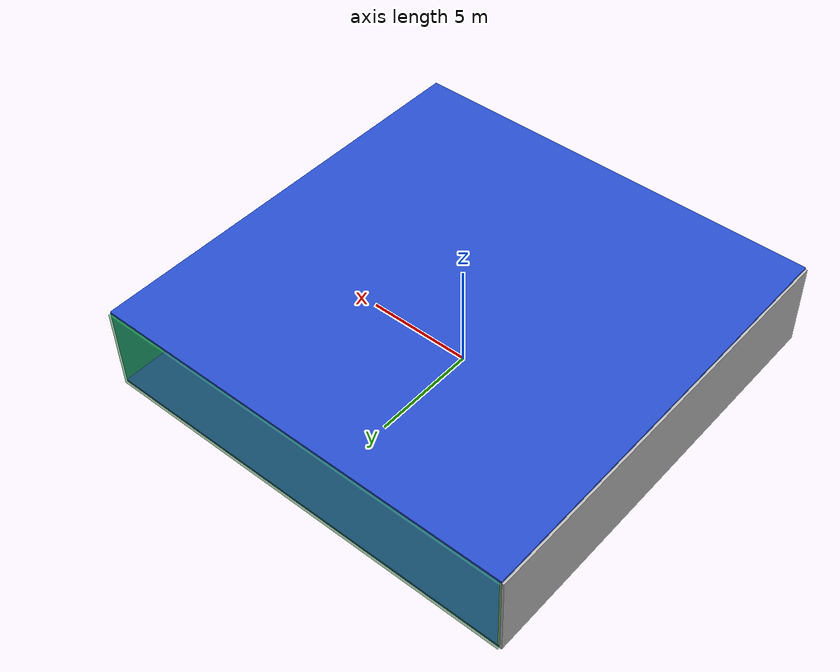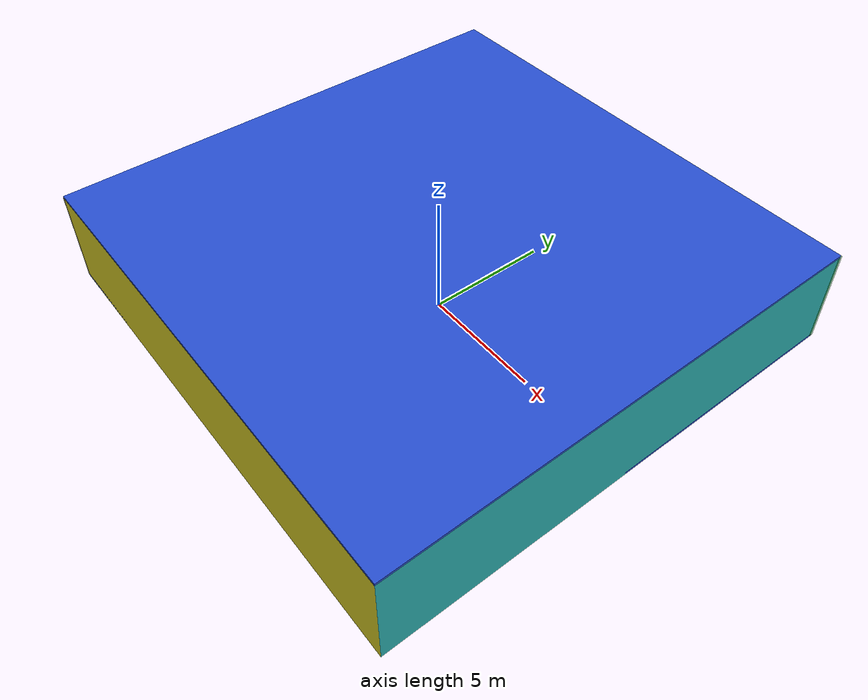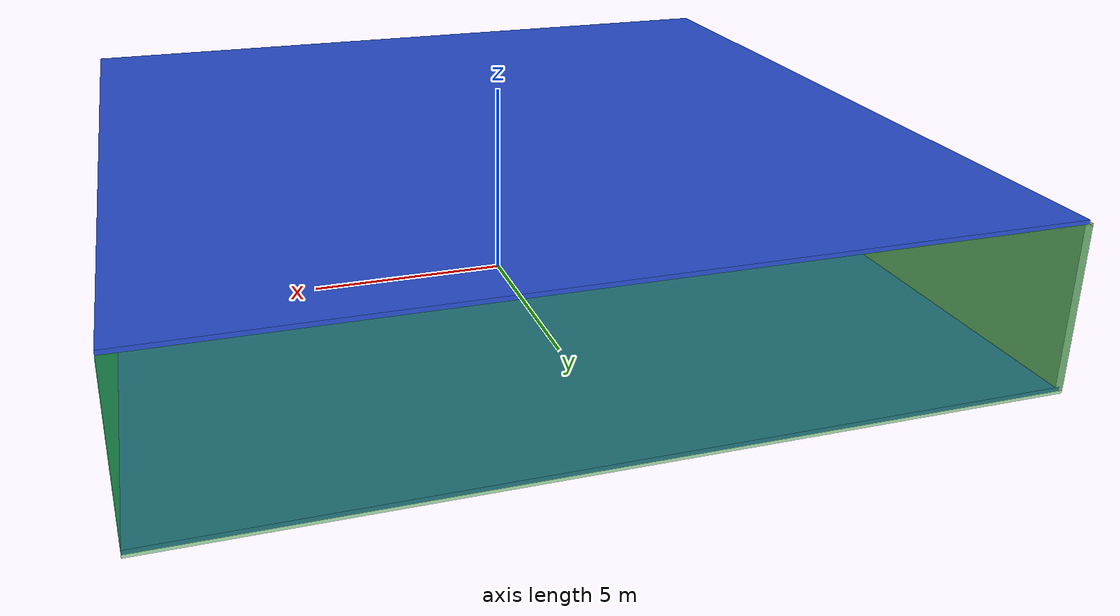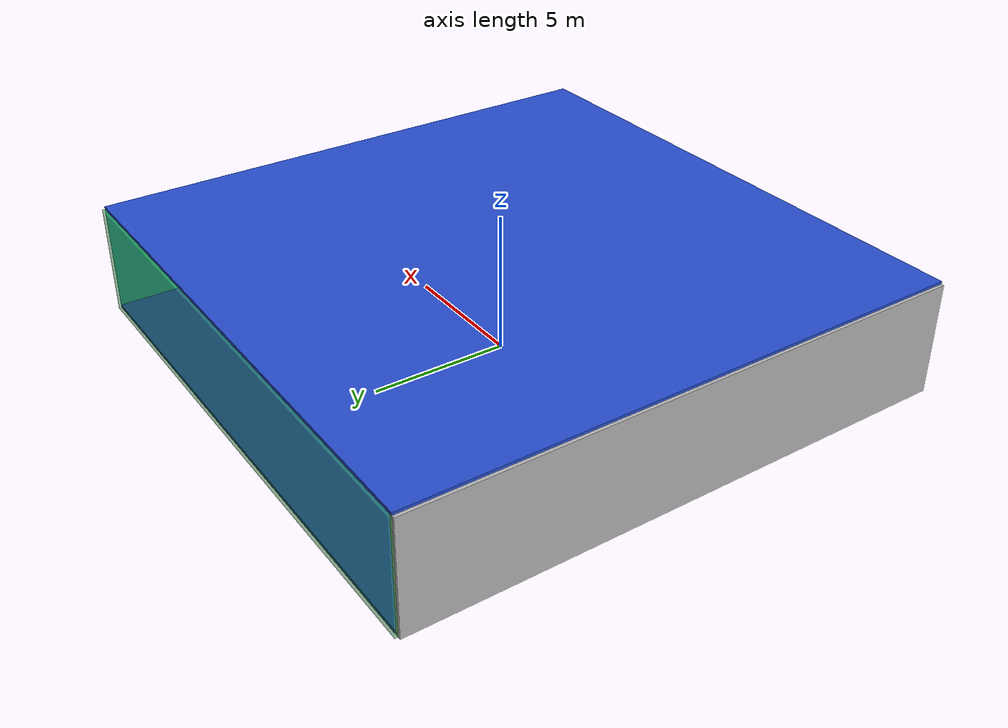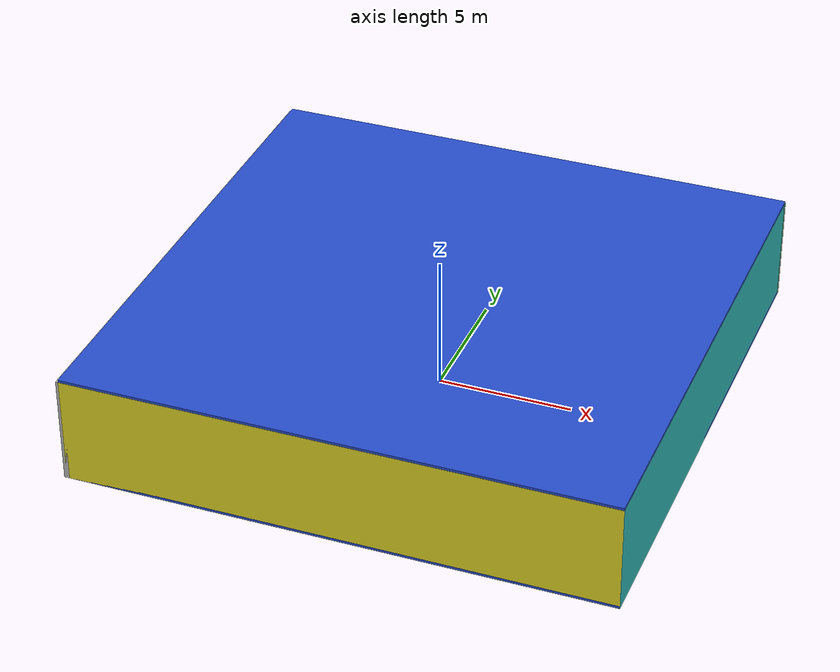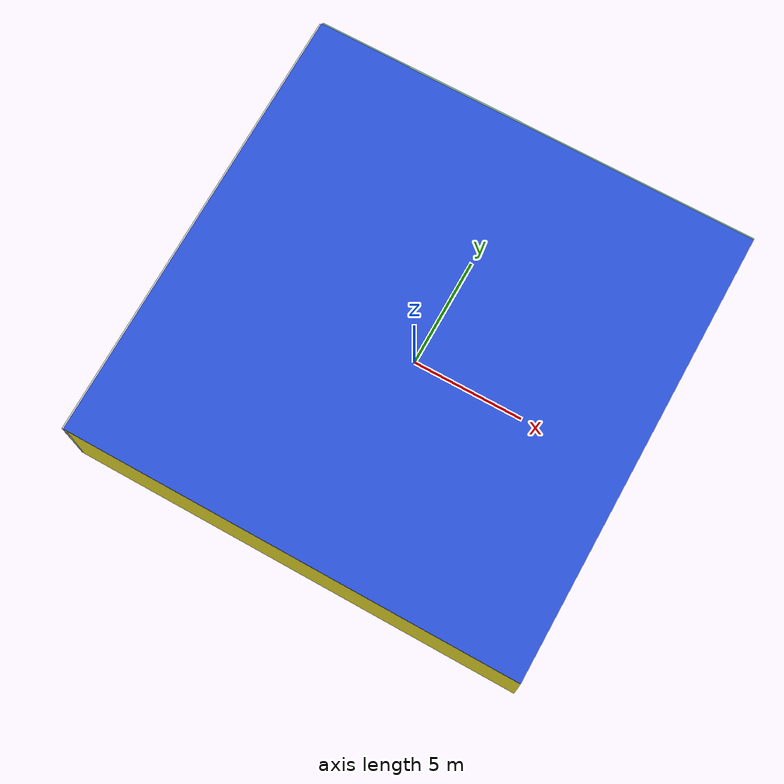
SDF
<sdf version="1.4">
 <world name="default">
  <physics type="ode">
   <max_step_size>0.001</max_step_size>
   <real_time_factor>1</real_time_factor>
   <real_time_update_rate>1000</real_time_update_rate>
   <gravity>0 0 -9.8</gravity>
  </physics>
  <scene><ambient>0.4 0.4 0.4 1</ambient><background>0.7 0.7 0.7 1</background><shadows>1</shadows></scene>
  <model name="Surrounding">
   <static>1</static>
   <link name="Ceiling">
    <collision name="Ceiling_Collision"><geometry><box><size>20 20 0.1</size></box></geometry></collision>
    <visual name="Ceiling_Visual">
     <geometry><box><size>20 20 0.1</size></box></geometry>
     <material>
      <script><uri>file://media/materials/scripts/gazebo.material</uri><name>Gazebo/BlueGlow</name></script>
     </material>
    </visual>
    <pose>0 0 4.05 0 0 0</pose>
   </link>
   <link name="Wall_South">
    <collision name="Wall_South_Collision">
     <geometry><box><size>20 0 4</size></box></geometry>
     <pose>0 0 2 0 -0 0</pose>
    </collision>
    <visual name="Wall_South_Visual">
     <pose>0 0 2 0 -0 0</pose>
     <geometry><box><size>20 0 4</size></box></geometry>
     <material>
      <script><uri>file://media/materials/scripts/gazebo.material</uri><name>Gazebo/YellowGlow</name></script>
     </material>
    </visual>
    <velocity_decay><linear>0</linear><angular>0</angular></velocity_decay>
    <pose>0 -10 0 0 -0 0</pose>
   </link>
   <link name="Wall_East">
    <collision name="Wall_21_Collision">
     <geometry><box><size>20 0 4</size></box></geometry>
     <pose>0 0 2 0 -0 0</pose>
    </collision>
    <visual name="Wall_21_Visual">
     <pose>0 0 2 0 -0 0</pose>
     <geometry><box><size>20 0 4</size></box></geometry>
     <material>
      <script>
       <uri>file://media/materials/scripts/gazebo.material</uri>
       <name>Gazebo/TurquoiseGlowOutline</name>
      </script>
     </material>
    </visual>
    <velocity_decay><linear>0</linear><angular>0</angular></velocity_decay>
    <pose>10 0 0 0 -0 1.5708</pose>
   </link>
   <link name="Wall_North">
    <collision name="Wall_22_Collision">
     <geometry><box><size>20 0.2 4</size></box></geometry>
     <pose>0 0 2 0 -0 0</pose>
    </collision>
    <visual name="Wall_22_Visual">
     <pose>0 0 2 0 -0 0</pose>
     <geometry><box><size>20 0.2 4</size></box></geometry>
     <material>
      <script><uri>file://media/materials/scripts/gazebo.material</uri><name>Gazebo/GreenTransparent</name></script>
     </material>
    </visual>
    <velocity_decay><linear>0</linear><angular>0</angular></velocity_decay>
    <pose>0 10 0 0 -0 0</pose>
   </link>
   <link name="Wall_West">
    <collision name="Wall_23_Collision">
     <geometry><box><size>20 0.2 4</size></box></geometry>
     <pose>0 0 2 0 -0 0</pose>
    </collision>
    <visual name="Wall_23_Visual">
     <pose>0 0 2 0 -0 0</pose>
     <geometry><box><size>20 0.2 4</size></box></geometry>
     <material>
      <script><uri>file://media/materials/scripts/gazebo.material</uri><name>Gazebo/JointAnchor</name></script>
     </material>
    </visual>
    <velocity_decay><linear>0</linear><angular>0</angular></velocity_decay>
    <pose>-10 0 0 0 0 -1.5708</pose>
   </link>
   <link name="Ground_link">
    <collision name="collision">
     <pose>0 0 .05 0 -0 0</pose>
     <geometry><box><size>20 20 0.1</size></box></geometry>
    </collision>
    <visual name="visual">
     <pose>0 0 .05 0 -0 0</pose>
     <geometry><box><size>20 20 0.1</size></box></geometry>
     <material>
      <script><uri>file://media/materials/scripts/gazebo.material</uri><name>Gazebo/BlueGlow</name></script>
     </material>
    </visual>
   </link>
   <static>1</static>
  </model>
  <spherical_coordinates>
   <surface_model>EARTH_WGS84</surface_model>
   <latitude_deg>0</latitude_deg>
   <longitude_deg>0</longitude_deg>
   <elevation>0</elevation>
   <heading_deg>0</heading_deg>
  </spherical_coordinates>
  <light name="lightball_0" type="diffuse">
   <diffuse>0.8 0.8 0.8 1</diffuse>
   <specular>0.2 0.2 0.2 1</specular>
   <attenuation>
    <range>100</range>
    <constant>0.7</constant>
    <linear>0.01</linear>
    <quadratic>0.001</quadratic>
   </attenuation>
   <direction>-0.5 0.1 -0.9</direction>
   <pose>-9.10089771124 -6.26602990499 1.65780251377 0 0 0</pose>
  </light>
  <light name="lightball_1" type="diffuse">
   <diffuse>0.8 0.8 0.8 1</diffuse>
   <specular>0.2 0.2 0.2 1</specular>
   <attenuation>
    <range>100</range>
    <constant>0.7</constant>
    <linear>0.01</linear>
    <quadratic>0.001</quadratic>
   </attenuation>
   <direction>-0.5 0.1 -0.9</direction>
   <pose>-7.89839133708 3.79721483904 1.67709903513 0 0 0</pose>
  </light>
  <light name="lightball_2" type="diffuse">
   <diffuse>0.8 0.8 0.8 1</diffuse>
   <specular>0.2 0.2 0.2 1</specular>
   <attenuation>
    <range>100</range>
    <constant>0.7</constant>
    <linear>0.01</linear>
    <quadratic>0.001</quadratic>
   </attenuation>
   <direction>-0.5 0.1 -0.9</direction>
   <pose>-7.87059768421 7.90048540281 2.8207219809 0 0 0</pose>
  </light>
  <light name="lightball_3" type="diffuse">
   <diffuse>0.8 0.8 0.8 1</diffuse>
   <specular>0.2 0.2 0.2 1</specular>
   <attenuation>
    <range>100</range>
    <constant>0.7</constant>
    <linear>0.01</linear>
    <quadratic>0.001</quadratic>
   </attenuation>
   <direction>-0.5 0.1 -0.9</direction>
   <pose>-8.70208519252 5.73544036003 1.28692159147 0 0 0</pose>
  </light>
  <light name="lightball_4" type="diffuse">
   <diffuse>0.8 0.8 0.8 1</diffuse>
   <specular>0.2 0.2 0.2 1</specular>
   <attenuation>
    <range>100</range>
    <constant>0.7</constant>
    <linear>0.01</linear>
    <quadratic>0.001</quadratic>
   </attenuation>
   <direction>-0.5 0.1 -0.9</direction>
   <pose>0.849216891897 8.42753774956 1.10747452472 0 0 0</pose>
  </light>
  <light name="lightball_5" type="diffuse">
   <diffuse>0.8 0.8 0.8 1</diffuse>
   <specular>0.2 0.2 0.2 1</specular>
   <attenuation>
    <range>100</range>
    <constant>0.7</constant>
    <linear>0.01</linear>
    <quadratic>0.001</quadratic>
   </attenuation>
   <direction>-0.5 0.1 -0.9</direction>
   <pose>3.70861710033 -6.21123067293 1.5614088453 0 0 0</pose>
  </light>
  <light name="lightball_6" type="diffuse">
   <diffuse>0.8 0.8 0.8 1</diffuse>
   <specular>0.2 0.2 0.2 1</specular>
   <attenuation>
    <range>100</range>
    <constant>0.7</constant>
    <linear>0.01</linear>
    <quadratic>0.001</quadratic>
   </attenuation>
   <direction>-0.5 0.1 -0.9</direction>
   <pose>2.39578773386 6.82902427213 1.0364751239 0 0 0</pose>
  </light>
  <light name="lightball_7" type="diffuse">
   <diffuse>0.8 0.8 0.8 1</diffuse>
   <specular>0.2 0.2 0.2 1</specular>
   <attenuation>
    <range>100</range>
    <constant>0.7</constant>
    <linear>0.01</linear>
    <quadratic>0.001</quadratic>
   </attenuation>
   <direction>-0.5 0.1 -0.9</direction>
   <pose>-9.29311749572 -1.06802623355 2.36095773427 0 0 0</pose>
  </light>
  <light name="lightball_8" type="diffuse">
   <diffuse>0.8 0.8 0.8 1</diffuse>
   <specular>0.2 0.2 0.2 1</specular>
   <attenuation>
    <range>100</range>
    <constant>0.7</constant>
    <linear>0.01</linear>
    <quadratic>0.001</quadratic>
   </attenuation>
   <direction>-0.5 0.1 -0.9</direction>
   <pose>-0.0722272029075 -2.36693703863 0.775973548242 0 0 0</pose>
  </light>
  <light name="lightball_9" type="diffuse">
   <diffuse>0.8 0.8 0.8 1</diffuse>
   <specular>0.2 0.2 0.2 1</specular>
   <attenuation>
    <range>100</range>
    <constant>0.7</constant>
    <linear>0.01</linear>
    <quadratic>0.001</quadratic>
   </attenuation>
   <direction>-0.5 0.1 -0.9</direction>
   <pose>9.35642255075 1.90696688095 3.49400226216 0 0 0</pose>
  </light>
  <light name="lightball_10" type="diffuse">
   <diffuse>0.8 0.8 0.8 1</diffuse>
   <specular>0.2 0.2 0.2 1</specular>
   <attenuation>
    <range>100</range>
    <constant>0.7</constant>
    <linear>0.01</linear>
    <quadratic>0.001</quadratic>
   </attenuation>
   <direction>-0.5 0.1 -0.9</direction>
   <pose>3.31399836149 -4.63430405328 1.7733691549 0 0 0</pose>
  </light>
  <include>
   <uri>model://construction_cone</uri>
   <pose>-7.36968752003 -1.24352868539 0 0 0 3.04730465344</pose>
  </include>
  <include>
   <uri>model://robocup_3Dsim_goal</uri>
   <pose>-2.09889962365 -6.72738009435 0 0 0 2.67127953862</pose>
  </include>
  <include><uri>model://cabinet</uri><pose>4.57189833142 -4.68089871766 0 0 0 0.818263488479</pose></include>
  <include><uri>model://cabinet</uri><pose>4.42919051857 2.06395670661 0 0 0 1.40369611039</pose></include>
 </world>
</sdf>

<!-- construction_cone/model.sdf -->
<sdf version="1.5">
  <model name="Construction Cone">
    <link name="link">
      <collision name="collision">
        <geometry>
          <mesh>
            <scale>10 10 10</scale>
            <uri>file://isr-testbed/construction_cone/meshes/construction_cone.dae</uri>
          </mesh>
        </geometry>
      </collision>
      <visual name="visual">
        <geometry>
          <mesh>
            <scale>10 10 10</scale>
            <uri>file://isr-testbed/construction_cone/meshes/construction_cone.dae</uri>
          </mesh>
        </geometry>
      </visual>
    </link>
  </model>
</sdf>

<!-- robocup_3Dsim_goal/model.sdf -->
<sdf version="1.5">
  <model name="robocup_3d_goal">
    <static>true</static>
    <link name="left_post">
      <pose>0 1.05 0.45 0 0 0</pose>
      <collision name="collision">
        <geometry>
          <cylinder>
            <radius>0.05</radius>
            <length>0.9</length>
          </cylinder>
        </geometry>
      </collision>
      <visual name="visual">
        <geometry>
          <cylinder>
            <radius>0.05</radius>
            <length>0.9</length>
          </cylinder>
        </geometry>
        <material>
          <script>
            <uri>file://media/materials/scripts/gazebo.material</uri>
            <name>Gazebo/ZincYellow</name>
          </script>
        </material>
      </visual>
    </link>
    <link name="left_support_horiz_lower">
      <pose>0.30 1.05 0.01 0 0 0</pose>
      <collision name="collision">
        <geometry>
          <box>
            <size>0.50 0.02 0.02</size>
          </box>
        </geometry>
      </collision>
      <visual name="visual">
        <geometry>
          <box>
            <size>0.50 0.02 0.02</size>
          </box>
        </geometry>
        <material>
          <script>
            <uri>file://media/materials/scripts/gazebo.material</uri>
            <name>Gazebo/White</name>
          </script>
        </material>
      </visual>
    </link>
    <link name="left_support_horiz_upper">
      <pose>0.30 1.05 0.79 0 0 0</pose>
      <collision name="collision">
        <geometry>
          <box>
            <size>0.50 0.02 0.02</size>
          </box>
        </geometry>
      </collision>
      <visual name="visual">
        <geometry>
          <box>
            <size>0.50 0.02 0.02</size>
          </box>
        </geometry>
        <material>
          <script>
            <uri>file://media/materials/scripts/gazebo.material</uri>
            <name>Gazebo/White</name>
          </script>
        </material>
      </visual>
    </link>
    <link name="left_support_vertical">
      <pose>0.56 1.05 0.4 0 1.5708 0</pose>
      <collision name="collision">
        <geometry>
          <box>
            <size>0.80 0.02 0.02</size>
          </box>
        </geometry>
      </collision>
      <visual name="visual">
        <geometry>
          <box>
            <size>0.80 0.02 0.02</size>
          </box>
        </geometry>
        <material>
          <script>
            <uri>file://media/materials/scripts/gazebo.material</uri>
            <name>Gazebo/White</name>
          </script>
        </material>
      </visual>
    </link>
    <link name="right_support_horiz_lower">
      <pose>0.30 -1.05 0.01 0 0 0</pose>
      <collision name="collision">
        <geometry>
          <box>
            <size>0.50 0.02 0.02</size>
          </box>
        </geometry>
      </collision>
      <visual name="visual">
        <geometry>
          <box>
            <size>0.50 0.02 0.02</size>
          </box>
        </geometry>
        <material>
          <script>
            <uri>file://media/materials/scripts/gazebo.material</uri>
            <name>Gazebo/White</name>
          </script>
        </material>
      </visual>
    </link>
    <link name="right_support_horiz_upper">
      <pose>0.30 -1.05 0.79 0 0 0</pose>
      <collision name="collision">
        <geometry>
          <box>
            <size>0.50 0.02 0.02</size>
          </box>
        </geometry>
      </collision>
      <visual name="visual">
        <geometry>
          <box>
            <size>0.50 0.02 0.02</size>
          </box>
        </geometry>
        <material>
          <script>
            <uri>file://media/materials/scripts/gazebo.material</uri>
            <name>Gazebo/White</name>
          </script>
        </material>
      </visual>
    </link>
    <link name="right_support_vertical">
      <pose>0.56 -1.05 0.4 0 1.5708 0</pose>
      <collision name="collision">
        <geometry>
          <box>
            <size>0.80 0.02 0.02</size>
          </box>
        </geometry>
      </collision>
      <visual name="visual">
        <geometry>
          <box>
            <size>0.80 0.02 0.02</size>
          </box>
        </geometry>
        <material>
          <script>
            <uri>file://media/materials/scripts/gazebo.material</uri>
            <name>Gazebo/White</name>
          </script>
        </material>
      </visual>
    </link>
    <link name="center_support_horiz_lower">
      <pose>0.56 0 0.01 0 1.5708 0</pose>
      <collision name="collision">
        <geometry>
          <box>
            <size>0.02 2.08 0.02</size>
          </box>
        </geometry>
      </collision>
      <visual name="visual">
        <geometry>
          <box>
            <size>0.02 2.08 0.02</size>
          </box>
        </geometry>
        <material>
          <script>
            <uri>file://media/materials/scripts/gazebo.material</uri>
            <name>Gazebo/White</name>
          </script>
        </material>
      </visual>
    </link>
    <link name="center_support_horiz_upper">
      <pose>0.56 0 0.79 0 1.5708 0</pose>
      <collision name="collision">
        <geometry>
          <box>
            <size>0.02 2.08 0.02</size>
          </box>
        </geometry>
      </collision>
      <visual name="visual">
        <geometry>
          <box>
            <size>0.02 2.08 0.02</size>
          </box>
        </geometry>
        <material>
          <script>
            <uri>file://media/materials/scripts/gazebo.material</uri>
            <name>Gazebo/White</name>
          </script>
        </material>
      </visual>
    </link>
    <link name="right_post">
      <pose>0 -1.05 0.45 0 0 0</pose>
      <collision name="collision">
        <geometry>
          <cylinder>
            <radius>0.05</radius>
            <length>0.9</length>
          </cylinder>
        </geometry>
      </collision>
      <visual name="visual">
        <geometry>
          <cylinder>
            <radius>0.05</radius>
            <length>0.9</length>
          </cylinder>
        </geometry>
        <material>
          <script>
            <uri>file://media/materials/scripts/gazebo.material</uri>
            <name>Gazebo/ZincYellow</name>
          </script>
        </material>
      </visual>
    </link>
    <link name="crossbar">
      <pose>0 0 0.85 1.57 1.57 0</pose>
      <collision name="collision">
        <geometry>
          <cylinder>
            <radius>0.05</radius>
            <length>2.0</length>
          </cylinder>
        </geometry>
      </collision>
      <visual name="visual">
        <geometry>
          <cylinder>
            <radius>0.05</radius>
            <length>2.0</length>
          </cylinder>
        </geometry>
        <material>
          <script>
            <uri>file://media/materials/scripts/gazebo.material</uri>
            <name>Gazebo/ZincYellow</name>
          </script>
        </material>
      </visual>
    </link>
    <link name="center_net">
      <pose>0.56 0 0.40 0 0 0</pose>
      <collision name="collision">
        <geometry>
          <box>
            <size>0.01 2.1 0.80</size>
          </box>
        </geometry>
      </collision>
      <visual name="visual">
        <geometry>
          <box>
            <size>0.01 2.1 0.80</size>
          </box>
        </geometry>
        <material>
          <script>
            <uri>model://../model_source/models/robocup09_spl_field/materials/scripts/</uri>
            <uri>model://../model_source/models/robocup09_spl_field/materials/textures/</uri>
            <name>RoboCup/Net</name>
          </script>
        </material>
      </visual>
    </link>
    <link name="left_net">
      <pose>0.30 1.05 0.40 0 0 0</pose>
      <collision name="collision">
        <geometry>
          <box>
            <size>0.50 0.01 0.76</size>
          </box>
        </geometry>
      </collision>
      <visual name="visual">
        <geometry>
          <box>
            <size>0.50 0.01 0.76</size>
          </box>
        </geometry>
        <material>
          <script>
            <uri>model://../model_source/models/robocup09_spl_field/materials/scripts/</uri>
            <uri>model://../model_source/models/robocup09_spl_field/materials/textures/</uri>
            <name>RoboCup/Net</name>
          </script>
        </material>
      </visual>
    </link>
    <link name="right_net">
      <pose>0.30 -1.05 0.40 0 0 0</pose>
      <collision name="collision">
        <geometry>
          <box>
            <size>0.50 0.01 0.76</size>
          </box>
        </geometry>
      </collision>
      <visual name="visual">
        <geometry>
          <box>
            <size>0.50 0.01 0.76</size>
          </box>
        </geometry>
        <material>
          <script>
            <uri>model://../model_source/models/robocup09_spl_field/materials/scripts/</uri>
            <uri>model://../model_source/models/robocup09_spl_field/materials/textures/</uri>
            <name>RoboCup/Net</name>
          </script>
        </material>
      </visual>
    </link>
  </model>
</sdf>

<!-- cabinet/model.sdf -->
<sdf version="1.5">
  <model name="cabinet">
    <static>true</static>
    <link name="cabinet_bottom_plate">
      <inertial>
        <pose>0 0 -1 0 0 0</pose>
        <inertia>
          <ixx>2.050000</ixx>
          <ixy>0</ixy>
          <ixz>0</ixz>
          <iyy>2.050000</iyy>
          <iyz>0</iyz>
          <izz>2.050000</izz>
        </inertia>
        <mass>25.000000</mass>
      </inertial>
      <collision name="cabinet_bottom_plate_geom">
        <pose>0 0 0.010000 0 0 0</pose>
        <geometry>
          <box>
            <size>0.450000 0.450000 0.020000</size>
          </box>
        </geometry>
      </collision>
      <visual name="cabinet_bottom_plate_geom_visual">
        <pose>0 0 0.010000 0 0 0</pose>
        <geometry>
          <box>
            <size>0.450000 0.450000 0.020000</size>
          </box>
        </geometry>
        <material>
          <script>
            <uri>model://media/materials/scripts/gazebo.material</uri>
            <name>Gazebo/Wood</name>
          </script>
        </material>
      </visual>
      <collision name="cabinet_bottom_plate_geom_cabinet_back_plate">
        <pose>0.235000 0 0.510000 0 0 0</pose>
        <geometry>
          <box>
            <size>0.020000 0.450000 1.020000</size>
          </box>
        </geometry>
      </collision>
      <visual name="cabinet_bottom_plate_geom_cabinet_back_plate_visual">
        <pose>0.235000 0 0.510000 0 0 0</pose>
        <geometry>
          <box>
            <size>0.020000 0.450000 1.020000</size>
          </box>
        </geometry>
        <material>
          <script>
            <uri>model://media/materials/scripts/gazebo.material</uri>
            <name>Gazebo/Wood</name>
          </script>
        </material>
      </visual>
      <collision name="cabinet_bottom_plate_geom_cabinet_left_plate">
        <pose>0 0.235000 0.510000 0 0 0</pose>
        <geometry>
          <box>
            <size>0.450000 0.020000 1.020000</size>
          </box>
        </geometry>
      </collision>
      <visual name="cabinet_bottom_plate_geom_cabinet_left_plate_visual">
        <pose>0 0.235000 0.510000 0 0 0</pose>
        <geometry>
          <box>
            <size>0.450000 0.020000 1.020000</size>
          </box>
        </geometry>
        <material>
          <script>
            <uri>model://media/materials/scripts/gazebo.material</uri>
            <name>Gazebo/Wood</name>
          </script>
        </material>
      </visual>
      <collision name="cabinet_bottom_plate_geom_cabinet_middle_plate">
        <pose>0 0 0.510000 0 0 0</pose>
        <geometry>
          <box>
            <size>0.450000 0.450000 0.020000</size>
          </box>
        </geometry>
      </collision>
      <visual name="cabinet_bottom_plate_geom_cabinet_middle_plate_visual">
        <pose>0 0 0.510000 0 0 0</pose>
        <geometry>
          <box>
            <size>0.450000 0.450000 0.020000</size>
          </box>
        </geometry>
        <material>
          <script>
            <uri>model://media/materials/scripts/gazebo.material</uri>
            <name>Gazebo/Wood</name>
          </script>
        </material>
      </visual>
      <collision name="cabinet_bottom_plate_geom_cabinet_right_plate">
        <pose>0 -0.235000 0.510000 0 0 0</pose>
        <geometry>
          <box>
            <size>0.450000 0.020000 1.020000</size>
          </box>
        </geometry>
      </collision>
      <visual name="cabinet_bottom_plate_geom_cabinet_right_plate_visual">
        <pose>0 -0.235000 0.510000 0 0 0</pose>
        <geometry>
          <box>
            <size>0.450000 0.020000 1.020000</size>
          </box>
        </geometry>
        <material>
          <script>
            <uri>model://media/materials/scripts/gazebo.material</uri>
            <name>Gazebo/Wood</name>
          </script>
        </material>
      </visual>
      <collision name="cabinet_bottom_plate_geom_cabinet_top_plate">
        <pose>0 0 1.010000 0 0 0</pose>
        <geometry>
          <box>
            <size>0.450000 0.450000 0.020000</size>
          </box>
        </geometry>
      </collision>
      <visual name="cabinet_bottom_plate_geom_cabinet_top_plate_visual">
        <pose>0 0 1.010000 0 0 0</pose>
        <geometry>
          <box>
            <size>0.450000 0.450000 0.020000</size>
          </box>
        </geometry>
        <material>
          <script>
            <uri>model://media/materials/scripts/gazebo.material</uri>
            <name>Gazebo/Wood</name>
          </script>
        </material>
      </visual>
    </link>
  </model>
</sdf>
